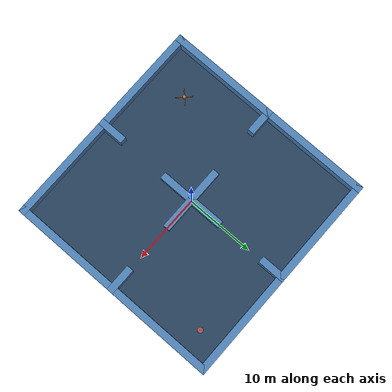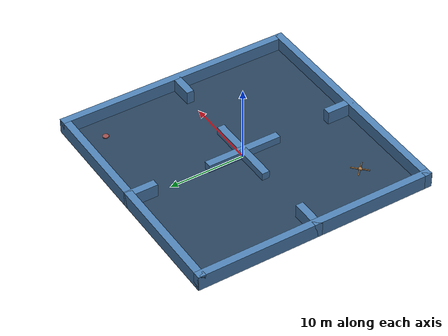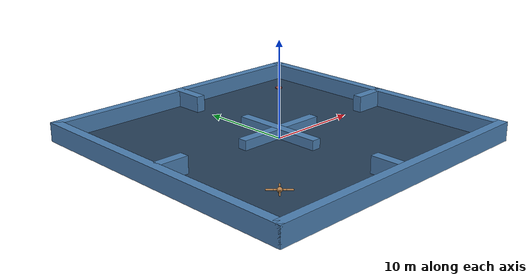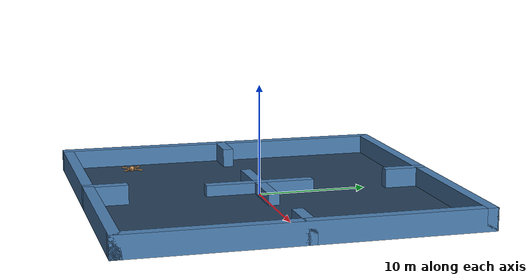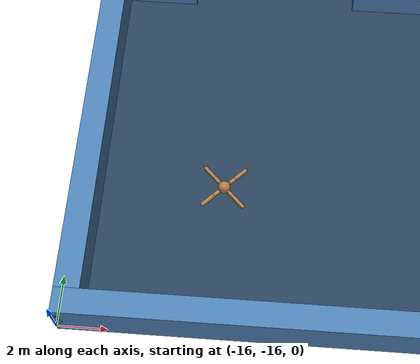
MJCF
<mujoco model="ant">
    <include file="./common/skybox.xml"/>
    <include file="./common/visual.xml"/>
    <include file="./common/materials.xml"/>
    <compiler inertiafromgeom="true" angle="degree" coordinate="local" />
    <option timestep="0.02" integrator="RK4"/>
    <default>
        <joint limited="true" armature="1" damping="1" />
        <geom condim="3" conaffinity="0" margin="0.01" friction="1 0.5 0.5" solref=".02 1" solimp=".8 .8 .01" density="5.0" material="self" />
        <default class="wall">
            <geom type="box" material="decoration"/>
        </default>
    </default>
    <worldbody>
        <camera name="global"  pos="-10 10 10" xyaxes="-1 -1 0 1 0 1" mode="trackcom"/>
        <camera name="fixed" pos="0 0 40" quat="1 0 0 0"/>
        <geom name="floor" material="grid" pos="0 0 0" size="15 15 .5" type="plane" conaffinity="1" condim="3" />
        <geom name="wall_px" class="wall" pos="-15.5 0 .7" zaxis="1 0 0"  size="1 16 .5" conaffinity="1" condim="3"/>
        <geom name="wall_py" class="wall" pos="0 -15.5 .7" zaxis="0 1 0"  size="16 1 .5" conaffinity="1" condim="3"/>
        <geom name="wall_nx" class="wall" pos="15.5 0 .7" zaxis="-1 0 0"  size="1 16 .5" conaffinity="1" condim="3"/>
        <geom name="wall_ny" class="wall" pos="0 15.5 .7" zaxis="0 -1 0"  size="16 1 .5" conaffinity="1" condim="3"/>
        <geom name="wall_tpy" class="wall" pos="14 0  .7" zaxis="0 1 0"  size="2 1 .5" conaffinity="1" condim="3"/>
        <geom name="wall_tny" class="wall" pos="-14 0 .7" zaxis="0 -1 0"  size="2 1 .5" conaffinity="1" condim="3"/>
        <geom name="wall_tpx" class="wall" pos="0 14  .7" zaxis="1 0 0"  size="1 2 .5" conaffinity="1" condim="3"/>
        <geom name="wall_tnx" class="wall" pos="0 -14 .7" zaxis="-1 0 0"  size="1 2 .5" conaffinity="1" condim="3"/>
        <geom name="wall_center_x" class="wall" pos="0 0 .7" zaxis="1 0 0"  size="0.5 5 .5" conaffinity="1" condim="3"/>
        <geom name="wall_center_y" class="wall" pos="0 0 .7" zaxis="0 1 0"  size="5 0.5 .5" conaffinity="1" condim="3"/>
        <site name="target" type="cylinder" size=".4 .06" pos="12 12 .05" material="target"/>
        <body name="torso" pos="-10 -10 0.75">
            <geom name="torso_geom" type="sphere" size="0.25" pos="0 0 0" />
            <joint name="root" type="free" limited="false" pos="0 0 0" axis="0 0 1" margin="0.01" armature="0" damping="0" />
            <camera name="egocentric"  pos=".3 0 .11" xyaxes="0 -1 0 .4 0 1" fovy="60"/>
            <camera name="x"  pos="-1.7 0 1" xyaxes="0 -1 0 .75 0 1" mode="trackcom"/>
            <camera name="y"  pos="0 4 2" xyaxes="-1 0 0 0 -.5 1" mode="trackcom"/>
            <light name="light" pos="0 0 4" mode="trackcom"/>
            <body name="front_left_leg" pos="0 0 0">
                <geom name="aux_1_geom" type="capsule" size="0.08" fromto="0.0 0.0 0.0 0.2 0.2 0.0" />
                <body name="aux_1" pos="0.2 0.2 0">
                    <joint name="hip_1" type="hinge" pos="0.0 0.0 0.0" axis="0 0 1" range="-30 30" />
                    <geom name="left_leg_geom" type="capsule" size="0.08" fromto="0.0 0.0 0.0 0.2 0.2 0.0" />
                    <body pos="0.2 0.2 0">
                        <joint name="ankle_1" type="hinge" pos="0.0 0.0 0.0" axis="-1 1 0" range="30 70" />
                        <geom name="left_ankle_geom" type="capsule" size="0.08" fromto="0.0 0.0 0.0 0.4 0.4 0.0" />
                    </body>
                </body>
            </body>
            <body name="front_right_leg" pos="0 0 0">
                <geom name="aux_2_geom" type="capsule" size="0.08" fromto="0.0 0.0 0.0 -0.2 0.2 0.0" />
                <body name="aux_2" pos="-0.2 0.2 0">
                    <joint name="hip_2" type="hinge" pos="0.0 0.0 0.0" axis="0 0 1" range="-30 30" />
                    <geom name="right_leg_geom" type="capsule" size="0.08" fromto="0.0 0.0 0.0 -0.2 0.2 0.0" />
                    <body pos="-0.2 0.2 0">
                        <joint name="ankle_2" type="hinge" pos="0.0 0.0 0.0" axis="1 1 0" range="-70 -30" />
                        <geom name="right_ankle_geom" type="capsule" size="0.08" fromto="0.0 0.0 0.0 -0.4 0.4 0.0" />
                    </body>
                </body>
            </body>
            <body name="back_leg" pos="0 0 0">
                <geom name="aux_3_geom" type="capsule" size="0.08" fromto="0.0 0.0 0.0 -0.2 -0.2 0.0" />
                <body name="aux_3" pos="-0.2 -0.2 0">
                    <joint name="hip_3" type="hinge" pos="0.0 0.0 0.0" axis="0 0 1" range="-30 30" />
                    <geom name="back_leg_geom" type="capsule" size="0.08" fromto="0.0 0.0 0.0 -0.2 -0.2 0.0" />
                    <body pos="-0.2 -0.2 0">
                        <joint name="ankle_3" type="hinge" pos="0.0 0.0 0.0" axis="-1 1 0" range="-70 -30" />
                        <geom name="third_ankle_geom" type="capsule" size="0.08" fromto="0.0 0.0 0.0 -0.4 -0.4 0.0" />
                    </body>
                </body>
            </body>
            <body name="right_back_leg" pos="0 0 0">
                <geom name="aux_4_geom" type="capsule" size="0.08" fromto="0.0 0.0 0.0 0.2 -0.2 0.0" />
                <body name="aux_4" pos="0.2 -0.2 0">
                    <joint name="hip_4" type="hinge" pos="0.0 0.0 0.0" axis="0 0 1" range="-30 30" />
                    <geom name="rightback_leg_geom" type="capsule" size="0.08" fromto="0.0 0.0 0.0 0.2 -0.2 0.0" />
                    <body pos="0.2 -0.2 0">
                        <joint name="ankle_4" type="hinge" pos="0.0 0.0 0.0" axis="1 1 0" range="30 70" />
                        <geom name="fourth_ankle_geom" type="capsule" size="0.08" fromto="0.0 0.0 0.0 0.4 -0.4 0.0" />
                    </body>
                </body>
            </body>
        </body>
    </worldbody>
    <actuator>
        <motor joint="hip_4" ctrlrange="-30.0 30.0" ctrllimited="true" />
        <motor joint="ankle_4" ctrlrange="-30.0 30.0" ctrllimited="true" />
        <motor joint="hip_1" ctrlrange="-30.0 30.0" ctrllimited="true" />
        <motor joint="ankle_1" ctrlrange="-30.0 30.0" ctrllimited="true" />
        <motor joint="hip_2" ctrlrange="-30.0 30.0" ctrllimited="true" />
        <motor joint="ankle_2" ctrlrange="-30.0 30.0" ctrllimited="true" />
        <motor joint="hip_3" ctrlrange="-30.0 30.0" ctrllimited="true" />
        <motor joint="ankle_3" ctrlrange="-30.0 30.0" ctrllimited="true" />
    </actuator>
</mujoco>

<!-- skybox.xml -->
<mujoco>
    <asset>
        <texture name="skybox" type="skybox" builtin="gradient" rgb1=".4 .6 .8" rgb2="0 0 0"
                 width="800" height="800" mark="random" markrgb="1 1 1"/>
    </asset>
</mujoco>

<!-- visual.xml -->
<mujoco>
    <visual>
        <headlight ambient=".4 .4 .4" diffuse=".8 .8 .8" specular="0.1 0.1 0.1"/>
        <map znear=".01"/>
        <quality shadowsize="2048"/>
    </visual>
</mujoco>

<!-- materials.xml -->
<!--
Common textures, colors and materials to be used throughout this suite. Some
materials such as xxx_highlight are activated on occurence of certain events,
for example receiving a positive reward.
-->
<mujoco>
    <asset>
        <texture name="grid" type="2d" builtin="checker" rgb1=".1 .2 .3" rgb2=".2 .3 .4" width="300" height="300" mark="edge" markrgb=".2 .3 .4"/>
        <material name="grid" texture="grid" texrepeat="1 1" texuniform="true" reflectance=".2"/>
        <material name="self" rgba=".7 .5 .3 1"/>
        <material name="self_default" rgba=".7 .5 .3 1"/>
        <material name="self_highlight" rgba="0 .5 .3 1"/>
        <material name="effector" rgba=".7 .4 .2 1"/>
        <material name="effector_default" rgba=".7 .4 .2 1"/>
        <material name="effector_highlight" rgba="0 .5 .3 1"/>
        <material name="decoration" rgba=".3 .5 .7 1"/>
        <material name="eye" rgba="0 .2 1 1"/>
        <material name="target" rgba=".6 .3 .3 1"/>
        <material name="target_default" rgba=".6 .3 .3 1"/>
        <material name="target_highlight" rgba=".6 .3 .3 .4"/>
        <material name="site" rgba=".5 .5 .5 .3"/>
    </asset>
</mujoco>
